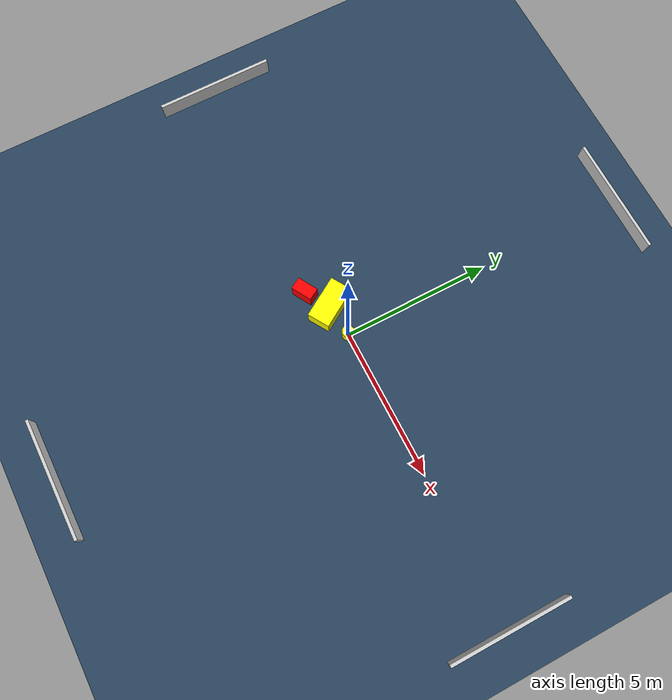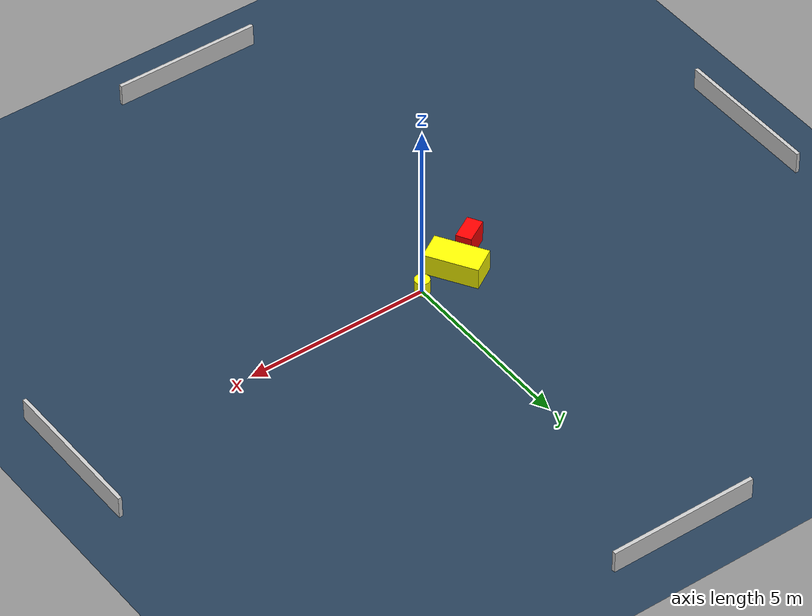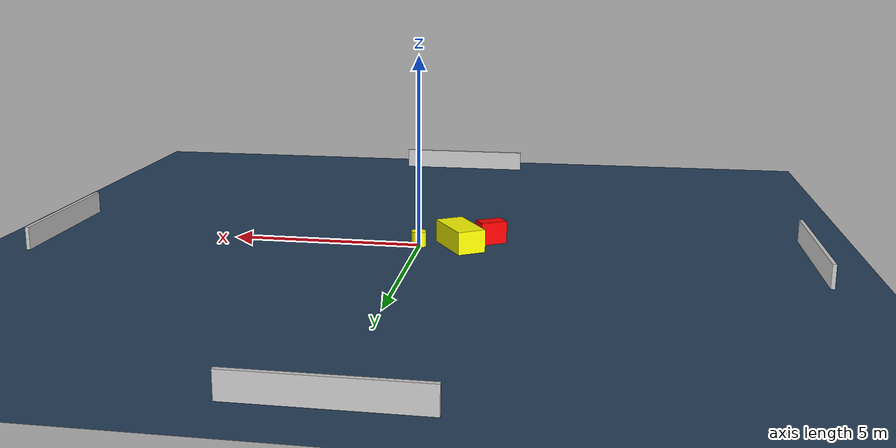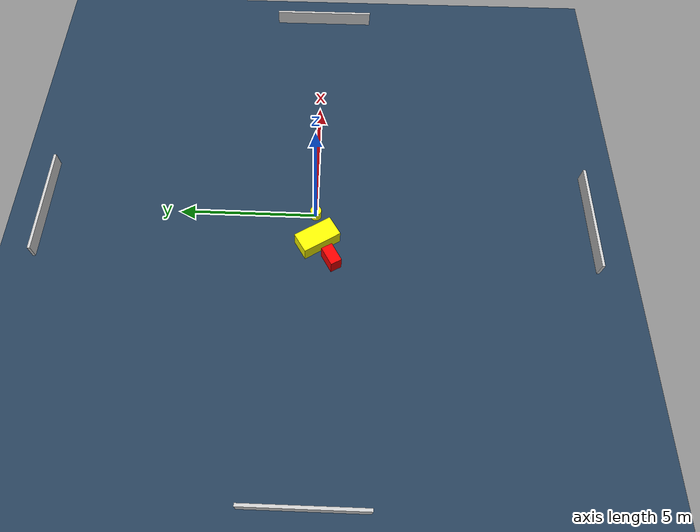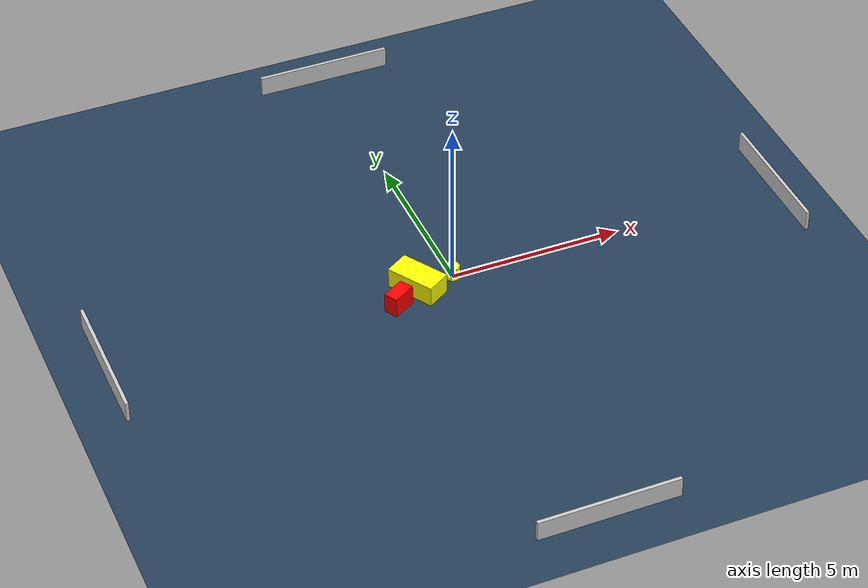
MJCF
<?xml version="1.0" ?>
<mujoco model="generated_environment">
  <option timestep="0.01" integrator="RK4" cone="elliptic"/>
  <default>
    <geom density="1"/>
  </default>
  <asset>
    <texture builtin="gradient" height="3072" name="skybox" rgb1="0.3 0.5 0.7" rgb2="0 0 0" type="skybox" width="512"/>
    <texture builtin="checker" height="300" name="groundplane" rgb1="0.2 0.3 0.4" rgb2="0.1 0.2 0.3" type="2d" width="300"/>
    <material name="groundplane" reflectance="0.2" texrepeat="5 5" texture="groundplane"/>
  </asset>
  <worldbody>
    <light dir="0 0 -1" directional="true" pos="0 0 1.5"/>
    <geom condim="3" friction="0.5 0.005 0.001" material="groundplane" name="floor" pos="0 0 0" size="0 0 0.05" type="plane"/>
    <body name="walls">
      <geom name="wall_1" condim="4" pos="-10.0 0.0 0.3" rgba="0.800000011920929 0.800000011920929 0.800000011920929 1.0" size="0.05 2.0 0.3" type="box"/>
      <geom name="wall_2" condim="4" pos="10.0 0.0 0.3" rgba="0.800000011920929 0.800000011920929 0.800000011920929 1.0" size="0.05 2.0 0.3" type="box"/>
      <geom name="wall_3" condim="4" pos="0.0 -10.0 0.3" rgba="0.800000011920929 0.800000011920929 0.800000011920929 1.0" size="2.0 0.05 0.3" type="box"/>
      <geom name="wall_4" condim="4" pos="0.0 10.0 0.3" rgba="0.800000011920929 0.800000011920929 0.800000011920929 1.0" size="2.0 0.05 0.3" type="box"/>
    </body>
    <body name="robot">
      <joint name="joint_x" type="slide" pos="0 0 0" axis="1 0 0"/>
      <joint name="joint_y" type="slide" pos="0 0 0" axis="0 1 0"/>
      <geom name="robot" type="cylinder" pos="0.0 0.0 0.2" size="0.2 0.2 0.0" mass="5.0" friction="1.0 0.005 0.0001" condim="4" rgba="1.0 1.0 0.0 1.0"/>
    </body>
    <body name="obstacle_1_movable">
      <geom name="obstacle_1_movable" condim="4" pos="-1.0841652539071183 -0.08942374832380834 0.3" euler="0 0 31.639704121071848" friction="0.0 0.005 0.001" rgba="1.0 1.0 0.0 1.0" size="0.3793004016011029 0.7216826191110495 0.3" type="box" mass="0.1"/>
      <joint type="free"/>
    </body>
    <body name="obstacle_2_static">
      <geom name="obstacle_2_static" condim="4" pos="-1.855082716416535 -0.6059915422376156 0.3" euler="0 0 299.92642857469934" friction="0.0 0.005 0.001" rgba="1.0 0.0 0.0 1.0" size="0.20678134416892524 0.35752285450394755 0.3" type="box"/>
    </body>
  </worldbody>
  <actuator>
    <motor name="actuator_x" joint="joint_x" gear="1" ctrlrange="-1 1"/>
    <motor name="actuator_y" joint="joint_y" gear="1" ctrlrange="-1 1"/>
  </actuator>
</mujoco>
